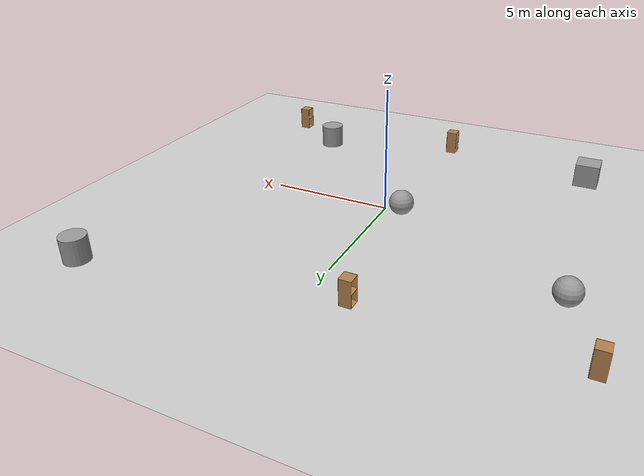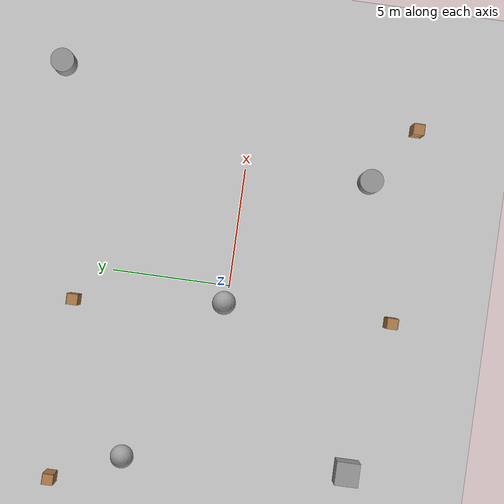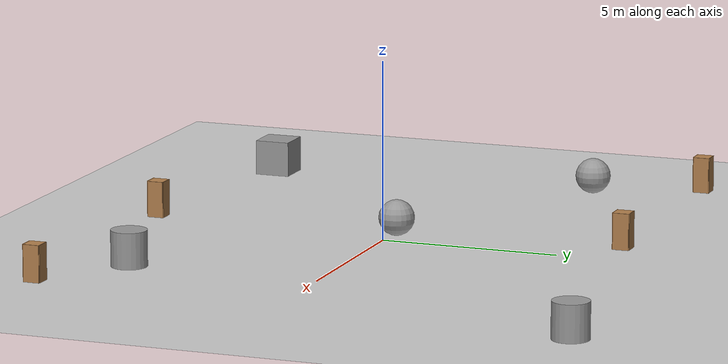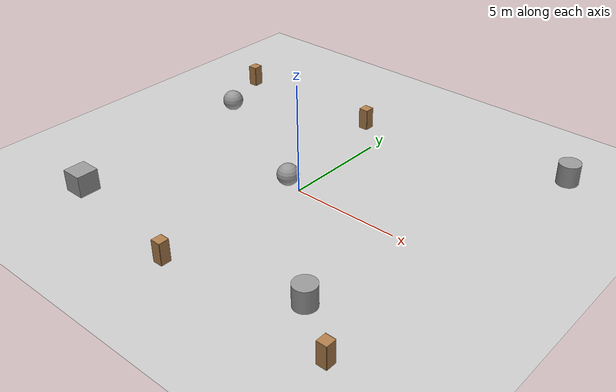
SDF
<sdf version="1.6">
 <world name="default">
  <light name="sun" type="directional">
   <pose>0 0 10 0 -0 0</pose>
   <diffuse>0.8 0.8 0.8 1</diffuse>
   <specular>0.2 0.2 0.2 1</specular>
   <attenuation>
    <range>1000</range>
    <constant>0.9</constant>
    <linear>0.01</linear>
    <quadratic>0.001</quadratic>
   </attenuation>
   <direction>-0.5 0.1 -0.9</direction>
  </light>
  <model name="ground_plane">
   <static>1</static>
   <link name="link">
    <collision name="collision">
     <geometry><plane><normal>0 0 1</normal><size>100 100</size></plane></geometry>
     <surface><friction><ode><mu>100</mu><mu2>50</mu2></ode></friction></surface>
    </collision>
    <visual name="visual">
     <cast_shadows>0</cast_shadows>
     <geometry><plane><normal>0 0 1</normal><size>100 100</size></plane></geometry>
     <material>
      <script><uri>file://media/materials/scripts/gazebo.material</uri><name>Gazebo/Grey</name></script>
     </material>
    </visual>
   </link>
  </model>
  <gravity>0 0 -9.8</gravity>
  <magnetic_field>6e-06 2.3e-05 -4.2e-05</magnetic_field>
  <atmosphere type="adiabatic"/>
  <physics name="default_physics" default="0" type="ode">
   <max_step_size>0.001</max_step_size>
   <real_time_factor>1</real_time_factor>
   <real_time_update_rate>1000</real_time_update_rate>
  </physics>
  <scene><ambient>0.4 0.4 0.4 1</ambient><background>0.7 0.7 0.7 1</background><shadows>1</shadows></scene>
  <audio><device>default</device></audio>
  <spherical_coordinates>
   <surface_model>EARTH_WGS84</surface_model>
   <latitude_deg>0</latitude_deg>
   <longitude_deg>0</longitude_deg>
   <elevation>0</elevation>
   <heading_deg>0</heading_deg>
  </spherical_coordinates>
  <model name="cabinet">
   <static>1</static>
   <link name="cabinet_bottom_plate">
    <inertial>
     <pose>0 0 -1 0 -0 0</pose>
     <inertia><ixx>2.05</ixx><ixy>0</ixy><ixz>0</ixz><iyy>2.05</iyy><iyz>0</iyz><izz>2.05</izz></inertia>
     <mass>25</mass>
    </inertial>
    <collision name="cabinet_bottom_plate_geom">
     <pose>0 0 0.01 0 -0 0</pose>
     <geometry><box><size>0.45 0.45 0.02</size></box></geometry>
    </collision>
    <visual name="cabinet_bottom_plate_geom_visual">
     <pose>0 0 0.01 0 -0 0</pose>
     <geometry><box><size>0.45 0.45 0.02</size></box></geometry>
     <material>
      <script><uri>file://media/materials/scripts/gazebo.material</uri><name>Gazebo/Wood</name></script>
     </material>
    </visual>
    <collision name="cabinet_bottom_plate_geom_cabinet_back_plate">
     <pose>0.235 0 0.51 0 -0 0</pose>
     <geometry><box><size>0.02 0.45 1.02</size></box></geometry>
    </collision>
    <visual name="cabinet_bottom_plate_geom_cabinet_back_plate_visual">
     <pose>0.235 0 0.51 0 -0 0</pose>
     <geometry><box><size>0.02 0.45 1.02</size></box></geometry>
     <material>
      <script><uri>file://media/materials/scripts/gazebo.material</uri><name>Gazebo/Wood</name></script>
     </material>
    </visual>
    <collision name="cabinet_bottom_plate_geom_cabinet_left_plate">
     <pose>0 0.235 0.51 0 -0 0</pose>
     <geometry><box><size>0.45 0.02 1.02</size></box></geometry>
    </collision>
    <visual name="cabinet_bottom_plate_geom_cabinet_left_plate_visual">
     <pose>0 0.235 0.51 0 -0 0</pose>
     <geometry><box><size>0.45 0.02 1.02</size></box></geometry>
     <material>
      <script><uri>file://media/materials/scripts/gazebo.material</uri><name>Gazebo/Wood</name></script>
     </material>
    </visual>
    <collision name="cabinet_bottom_plate_geom_cabinet_middle_plate">
     <pose>0 0 0.51 0 -0 0</pose>
     <geometry><box><size>0.45 0.45 0.02</size></box></geometry>
    </collision>
    <visual name="cabinet_bottom_plate_geom_cabinet_middle_plate_visual">
     <pose>0 0 0.51 0 -0 0</pose>
     <geometry><box><size>0.45 0.45 0.02</size></box></geometry>
     <material>
      <script><uri>file://media/materials/scripts/gazebo.material</uri><name>Gazebo/Wood</name></script>
     </material>
    </visual>
    <collision name="cabinet_bottom_plate_geom_cabinet_right_plate">
     <pose>0 -0.235 0.51 0 -0 0</pose>
     <geometry><box><size>0.45 0.02 1.02</size></box></geometry>
    </collision>
    <visual name="cabinet_bottom_plate_geom_cabinet_right_plate_visual">
     <pose>0 -0.235 0.51 0 -0 0</pose>
     <geometry><box><size>0.45 0.02 1.02</size></box></geometry>
     <material>
      <script><uri>file://media/materials/scripts/gazebo.material</uri><name>Gazebo/Wood</name></script>
     </material>
    </visual>
    <collision name="cabinet_bottom_plate_geom_cabinet_top_plate">
     <pose>0 0 1.01 0 -0 0</pose>
     <geometry><box><size>0.45 0.45 0.02</size></box></geometry>
    </collision>
    <visual name="cabinet_bottom_plate_geom_cabinet_top_plate_visual">
     <pose>0 0 1.01 0 -0 0</pose>
     <geometry><box><size>0.45 0.45 0.02</size></box></geometry>
     <material>
      <script><uri>file://media/materials/scripts/gazebo.material</uri><name>Gazebo/Wood</name></script>
     </material>
    </visual>
   </link>
   <pose>-1.43518 6.42979 0 0 -0 0</pose>
  </model>
  <model name="cabinet_clone">
   <static>1</static>
   <link name="cabinet_bottom_plate">
    <inertial>
     <pose>0 0 -1 0 -0 0</pose>
     <inertia><ixx>2.05</ixx><ixy>0</ixy><ixz>0</ixz><iyy>2.05</iyy><iyz>0</iyz><izz>2.05</izz></inertia>
     <mass>25</mass>
    </inertial>
    <collision name="cabinet_bottom_plate_geom">
     <pose>0 0 0.01 0 -0 0</pose>
     <geometry><box><size>0.45 0.45 0.02</size></box></geometry>
    </collision>
    <visual name="cabinet_bottom_plate_geom_visual">
     <pose>0 0 0.01 0 -0 0</pose>
     <geometry><box><size>0.45 0.45 0.02</size></box></geometry>
     <material>
      <script><uri>file://media/materials/scripts/gazebo.material</uri><name>Gazebo/Wood</name></script>
     </material>
    </visual>
    <collision name="cabinet_bottom_plate_geom_cabinet_back_plate">
     <pose>0.235 0 0.51 0 -0 0</pose>
     <geometry><box><size>0.02 0.45 1.02</size></box></geometry>
    </collision>
    <visual name="cabinet_bottom_plate_geom_cabinet_back_plate_visual">
     <pose>0.235 0 0.51 0 -0 0</pose>
     <geometry><box><size>0.02 0.45 1.02</size></box></geometry>
     <material>
      <script><uri>file://media/materials/scripts/gazebo.material</uri><name>Gazebo/Wood</name></script>
     </material>
    </visual>
    <collision name="cabinet_bottom_plate_geom_cabinet_left_plate">
     <pose>0 0.235 0.51 0 -0 0</pose>
     <geometry><box><size>0.45 0.02 1.02</size></box></geometry>
    </collision>
    <visual name="cabinet_bottom_plate_geom_cabinet_left_plate_visual">
     <pose>0 0.235 0.51 0 -0 0</pose>
     <geometry><box><size>0.45 0.02 1.02</size></box></geometry>
     <material>
      <script><uri>file://media/materials/scripts/gazebo.material</uri><name>Gazebo/Wood</name></script>
     </material>
    </visual>
    <collision name="cabinet_bottom_plate_geom_cabinet_middle_plate">
     <pose>0 0 0.51 0 -0 0</pose>
     <geometry><box><size>0.45 0.45 0.02</size></box></geometry>
    </collision>
    <visual name="cabinet_bottom_plate_geom_cabinet_middle_plate_visual">
     <pose>0 0 0.51 0 -0 0</pose>
     <geometry><box><size>0.45 0.45 0.02</size></box></geometry>
     <material>
      <script><uri>file://media/materials/scripts/gazebo.material</uri><name>Gazebo/Wood</name></script>
     </material>
    </visual>
    <collision name="cabinet_bottom_plate_geom_cabinet_right_plate">
     <pose>0 -0.235 0.51 0 -0 0</pose>
     <geometry><box><size>0.45 0.02 1.02</size></box></geometry>
    </collision>
    <visual name="cabinet_bottom_plate_geom_cabinet_right_plate_visual">
     <pose>0 -0.235 0.51 0 -0 0</pose>
     <geometry><box><size>0.45 0.02 1.02</size></box></geometry>
     <material>
      <script><uri>file://media/materials/scripts/gazebo.material</uri><name>Gazebo/Wood</name></script>
     </material>
    </visual>
    <collision name="cabinet_bottom_plate_geom_cabinet_top_plate">
     <pose>0 0 1.01 0 -0 0</pose>
     <geometry><box><size>0.45 0.45 0.02</size></box></geometry>
    </collision>
    <visual name="cabinet_bottom_plate_geom_cabinet_top_plate_visual">
     <pose>0 0 1.01 0 -0 0</pose>
     <geometry><box><size>0.45 0.45 0.02</size></box></geometry>
     <material>
      <script><uri>file://media/materials/scripts/gazebo.material</uri><name>Gazebo/Wood</name></script>
     </material>
    </visual>
   </link>
   <pose>7.54428 -6.96987 0 0 -0 0</pose>
  </model>
  <model name="cabinet_clone_0">
   <static>1</static>
   <link name="cabinet_bottom_plate">
    <inertial>
     <pose>0 0 -1 0 -0 0</pose>
     <inertia><ixx>2.05</ixx><ixy>0</ixy><ixz>0</ixz><iyy>2.05</iyy><iyz>0</iyz><izz>2.05</izz></inertia>
     <mass>25</mass>
    </inertial>
    <collision name="cabinet_bottom_plate_geom">
     <pose>0 0 0.01 0 -0 0</pose>
     <geometry><box><size>0.45 0.45 0.02</size></box></geometry>
    </collision>
    <visual name="cabinet_bottom_plate_geom_visual">
     <pose>0 0 0.01 0 -0 0</pose>
     <geometry><box><size>0.45 0.45 0.02</size></box></geometry>
     <material>
      <script><uri>file://media/materials/scripts/gazebo.material</uri><name>Gazebo/Wood</name></script>
     </material>
    </visual>
    <collision name="cabinet_bottom_plate_geom_cabinet_back_plate">
     <pose>0.235 0 0.51 0 -0 0</pose>
     <geometry><box><size>0.02 0.45 1.02</size></box></geometry>
    </collision>
    <visual name="cabinet_bottom_plate_geom_cabinet_back_plate_visual">
     <pose>0.235 0 0.51 0 -0 0</pose>
     <geometry><box><size>0.02 0.45 1.02</size></box></geometry>
     <material>
      <script><uri>file://media/materials/scripts/gazebo.material</uri><name>Gazebo/Wood</name></script>
     </material>
    </visual>
    <collision name="cabinet_bottom_plate_geom_cabinet_left_plate">
     <pose>0 0.235 0.51 0 -0 0</pose>
     <geometry><box><size>0.45 0.02 1.02</size></box></geometry>
    </collision>
    <visual name="cabinet_bottom_plate_geom_cabinet_left_plate_visual">
     <pose>0 0.235 0.51 0 -0 0</pose>
     <geometry><box><size>0.45 0.02 1.02</size></box></geometry>
     <material>
      <script><uri>file://media/materials/scripts/gazebo.material</uri><name>Gazebo/Wood</name></script>
     </material>
    </visual>
    <collision name="cabinet_bottom_plate_geom_cabinet_middle_plate">
     <pose>0 0 0.51 0 -0 0</pose>
     <geometry><box><size>0.45 0.45 0.02</size></box></geometry>
    </collision>
    <visual name="cabinet_bottom_plate_geom_cabinet_middle_plate_visual">
     <pose>0 0 0.51 0 -0 0</pose>
     <geometry><box><size>0.45 0.45 0.02</size></box></geometry>
     <material>
      <script><uri>file://media/materials/scripts/gazebo.material</uri><name>Gazebo/Wood</name></script>
     </material>
    </visual>
    <collision name="cabinet_bottom_plate_geom_cabinet_right_plate">
     <pose>0 -0.235 0.51 0 -0 0</pose>
     <geometry><box><size>0.45 0.02 1.02</size></box></geometry>
    </collision>
    <visual name="cabinet_bottom_plate_geom_cabinet_right_plate_visual">
     <pose>0 -0.235 0.51 0 -0 0</pose>
     <geometry><box><size>0.45 0.02 1.02</size></box></geometry>
     <material>
      <script><uri>file://media/materials/scripts/gazebo.material</uri><name>Gazebo/Wood</name></script>
     </material>
    </visual>
    <collision name="cabinet_bottom_plate_geom_cabinet_top_plate">
     <pose>0 0 1.01 0 -0 0</pose>
     <geometry><box><size>0.45 0.45 0.02</size></box></geometry>
    </collision>
    <visual name="cabinet_bottom_plate_geom_cabinet_top_plate_visual">
     <pose>0 0 1.01 0 -0 0</pose>
     <geometry><box><size>0.45 0.45 0.02</size></box></geometry>
     <material>
      <script><uri>file://media/materials/scripts/gazebo.material</uri><name>Gazebo/Wood</name></script>
     </material>
    </visual>
   </link>
   <pose>-0.651726 -6.969 0 0 -0 0</pose>
  </model>
  <model name="cabinet_clone_1">
   <static>1</static>
   <link name="cabinet_bottom_plate">
    <inertial>
     <pose>0 0 -1 0 -0 0</pose>
     <inertia><ixx>2.05</ixx><ixy>0</ixy><ixz>0</ixz><iyy>2.05</iyy><iyz>0</iyz><izz>2.05</izz></inertia>
     <mass>25</mass>
    </inertial>
    <collision name="cabinet_bottom_plate_geom">
     <pose>0 0 0.01 0 -0 0</pose>
     <geometry><box><size>0.45 0.45 0.02</size></box></geometry>
    </collision>
    <visual name="cabinet_bottom_plate_geom_visual">
     <pose>0 0 0.01 0 -0 0</pose>
     <geometry><box><size>0.45 0.45 0.02</size></box></geometry>
     <material>
      <script><uri>file://media/materials/scripts/gazebo.material</uri><name>Gazebo/Wood</name></script>
     </material>
    </visual>
    <collision name="cabinet_bottom_plate_geom_cabinet_back_plate">
     <pose>0.235 0 0.51 0 -0 0</pose>
     <geometry><box><size>0.02 0.45 1.02</size></box></geometry>
    </collision>
    <visual name="cabinet_bottom_plate_geom_cabinet_back_plate_visual">
     <pose>0.235 0 0.51 0 -0 0</pose>
     <geometry><box><size>0.02 0.45 1.02</size></box></geometry>
     <material>
      <script><uri>file://media/materials/scripts/gazebo.material</uri><name>Gazebo/Wood</name></script>
     </material>
    </visual>
    <collision name="cabinet_bottom_plate_geom_cabinet_left_plate">
     <pose>0 0.235 0.51 0 -0 0</pose>
     <geometry><box><size>0.45 0.02 1.02</size></box></geometry>
    </collision>
    <visual name="cabinet_bottom_plate_geom_cabinet_left_plate_visual">
     <pose>0 0.235 0.51 0 -0 0</pose>
     <geometry><box><size>0.45 0.02 1.02</size></box></geometry>
     <material>
      <script><uri>file://media/materials/scripts/gazebo.material</uri><name>Gazebo/Wood</name></script>
     </material>
    </visual>
    <collision name="cabinet_bottom_plate_geom_cabinet_middle_plate">
     <pose>0 0 0.51 0 -0 0</pose>
     <geometry><box><size>0.45 0.45 0.02</size></box></geometry>
    </collision>
    <visual name="cabinet_bottom_plate_geom_cabinet_middle_plate_visual">
     <pose>0 0 0.51 0 -0 0</pose>
     <geometry><box><size>0.45 0.45 0.02</size></box></geometry>
     <material>
      <script><uri>file://media/materials/scripts/gazebo.material</uri><name>Gazebo/Wood</name></script>
     </material>
    </visual>
    <collision name="cabinet_bottom_plate_geom_cabinet_right_plate">
     <pose>0 -0.235 0.51 0 -0 0</pose>
     <geometry><box><size>0.45 0.02 1.02</size></box></geometry>
    </collision>
    <visual name="cabinet_bottom_plate_geom_cabinet_right_plate_visual">
     <pose>0 -0.235 0.51 0 -0 0</pose>
     <geometry><box><size>0.45 0.02 1.02</size></box></geometry>
     <material>
      <script><uri>file://media/materials/scripts/gazebo.material</uri><name>Gazebo/Wood</name></script>
     </material>
    </visual>
    <collision name="cabinet_bottom_plate_geom_cabinet_top_plate">
     <pose>0 0 1.01 0 -0 0</pose>
     <geometry><box><size>0.45 0.45 0.02</size></box></geometry>
    </collision>
    <visual name="cabinet_bottom_plate_geom_cabinet_top_plate_visual">
     <pose>0 0 1.01 0 -0 0</pose>
     <geometry><box><size>0.45 0.45 0.02</size></box></geometry>
     <material>
      <script><uri>file://media/materials/scripts/gazebo.material</uri><name>Gazebo/Wood</name></script>
     </material>
    </visual>
   </link>
   <pose>-9.0326 6.43065 0 0 -0 0</pose>
  </model>
  <model name="unit_sphere">
   <pose>-7.74328 3.52953 0.5 0 -0 0</pose>
   <link name="link">
    <inertial>
     <mass>1</mass>
     <inertia><ixx>0.1</ixx><ixy>0</ixy><ixz>0</ixz><iyy>0.1</iyy><iyz>0</iyz><izz>0.1</izz></inertia>
    </inertial>
    <collision name="collision"><geometry><sphere><radius>0.5</radius></sphere></geometry></collision>
    <visual name="visual">
     <geometry><sphere><radius>0.5</radius></sphere></geometry>
     <material>
      <script><name>Gazebo/Grey</name><uri>file://media/materials/scripts/gazebo.material</uri></script>
     </material>
    </visual>
   </link>
  </model>
  <model name="unit_sphere_clone">
   <pose>-0.744456 0.122564 0.5 0 -0 0</pose>
   <link name="link">
    <inertial>
     <mass>1</mass>
     <inertia><ixx>0.1</ixx><ixy>0</ixy><ixz>0</ixz><iyy>0.1</iyy><iyz>0</iyz><izz>0.1</izz></inertia>
    </inertial>
    <collision name="collision"><geometry><sphere><radius>0.5</radius></sphere></geometry></collision>
    <visual name="visual">
     <geometry><sphere><radius>0.5</radius></sphere></geometry>
     <material>
      <script><name>Gazebo/Grey</name><uri>file://media/materials/scripts/gazebo.material</uri></script>
     </material>
    </visual>
   </link>
  </model>
  <model name="unit_cylinder">
   <pose>5.14932 -5.31083 0.499997 3e-06 4e-06 -0</pose>
   <link name="link">
    <inertial>
     <mass>1</mass>
     <inertia><ixx>0.145833</ixx><ixy>0</ixy><ixz>0</ixz><iyy>0.145833</iyy><iyz>0</iyz><izz>0.125</izz></inertia>
    </inertial>
    <collision name="collision">
     <geometry><cylinder><radius>0.5</radius><length>1</length></cylinder></geometry>
    </collision>
    <visual name="visual">
     <geometry><cylinder><radius>0.5</radius><length>1</length></cylinder></geometry>
     <material>
      <script><name>Gazebo/Grey</name><uri>file://media/materials/scripts/gazebo.material</uri></script>
     </material>
    </visual>
   </link>
  </model>
  <model name="unit_box">
   <pose>-7.14469 -5.95519 0.499995 -1e-05 -0 0</pose>
   <link name="link">
    <inertial>
     <mass>1</mass>
     <inertia>
      <ixx>0.166667</ixx>
      <ixy>0</ixy>
      <ixz>0</ixz>
      <iyy>0.166667</iyy>
      <iyz>0</iyz>
      <izz>0.166667</izz>
     </inertia>
    </inertial>
    <collision name="collision"><geometry><box><size>1 1 1</size></box></geometry></collision>
    <visual name="visual">
     <geometry><box><size>1 1 1</size></box></geometry>
     <material>
      <script><name>Gazebo/Grey</name><uri>file://media/materials/scripts/gazebo.material</uri></script>
     </material>
    </visual>
   </link>
  </model>
  <model name="unit_cylinder_clone">
   <pose>8.41929 8.18096 0.499997 3e-06 4e-06 -0</pose>
   <link name="link">
    <inertial>
     <mass>1</mass>
     <inertia><ixx>0.145833</ixx><ixy>0</ixy><ixz>0</ixz><iyy>0.145833</iyy><iyz>0</iyz><izz>0.125</izz></inertia>
    </inertial>
    <collision name="collision">
     <geometry><cylinder><radius>0.5</radius><length>1</length></cylinder></geometry>
    </collision>
    <visual name="visual">
     <geometry><cylinder><radius>0.5</radius><length>1</length></cylinder></geometry>
     <material>
      <script><name>Gazebo/Grey</name><uri>file://media/materials/scripts/gazebo.material</uri></script>
     </material>
    </visual>
   </link>
  </model>
 </world>
</sdf>
